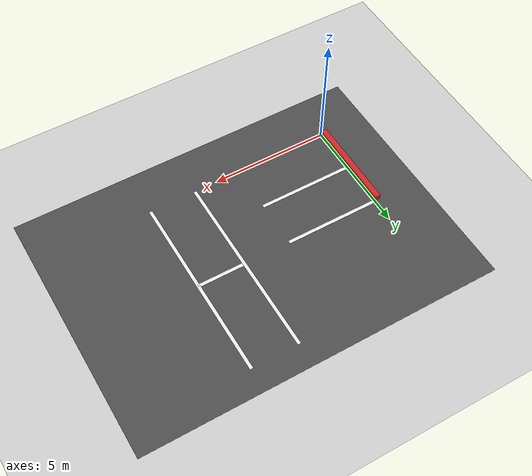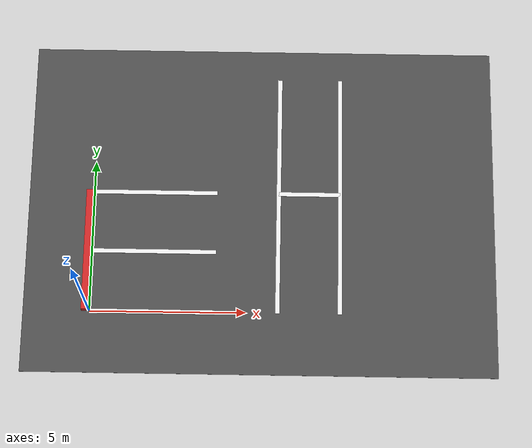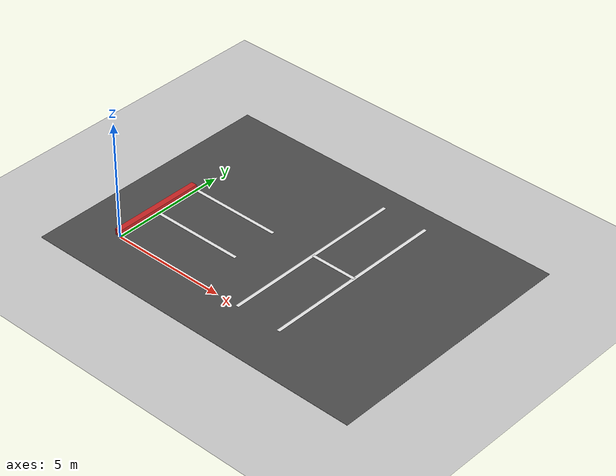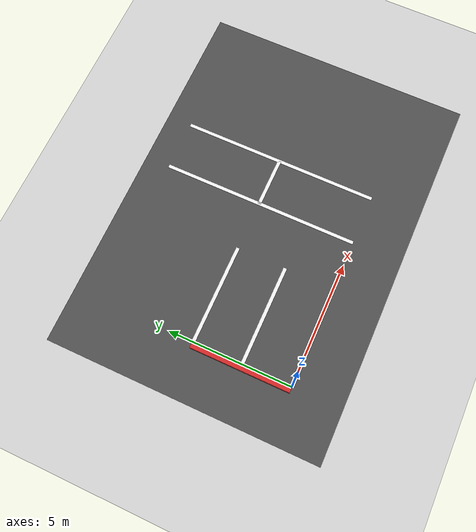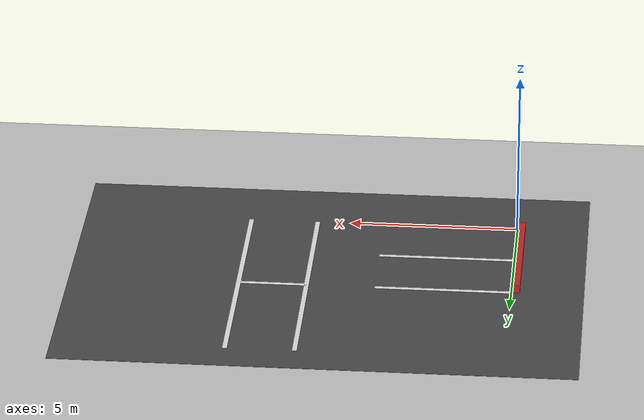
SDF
<sdf version="1.4">
 <world name="default">
  <light name="sun" type="directional">
   <pose>0 0 10 0 -0 0</pose>
   <diffuse>0.8 0.8 0.8 1</diffuse>
   <specular>0.2 0.2 0.2 1</specular>
   <attenuation>
    <range>1000</range>
    <constant>0.9</constant>
    <linear>0.01</linear>
    <quadratic>0.001</quadratic>
   </attenuation>
   <direction>-0.5 0.1 -0.9</direction>
  </light>
  <model name="ground_plane">
   <static>1</static>
   <link name="link">
    <collision name="collision">
     <geometry><plane><normal>0 0 1</normal><size>100 100</size></plane></geometry>
     <surface><friction><ode><mu>100</mu><mu2>50</mu2></ode></friction></surface>
    </collision>
    <visual name="visual">
     <cast_shadows>0</cast_shadows>
     <geometry><plane><normal>0 0 1</normal><size>100 100</size></plane></geometry>
     <material>
      <script><uri>file://media/materials/scripts/gazebo.material</uri><name>Gazebo/Grey</name></script>
     </material>
    </visual>
    <velocity_decay><linear>0</linear><angular>0</angular></velocity_decay>
   </link>
  </model>
  <physics type="ode">
   <max_step_size>0.001</max_step_size>
   <real_time_factor>1</real_time_factor>
   <real_time_update_rate>1000</real_time_update_rate>
   <gravity>0 0 -9.8</gravity>
  </physics>
  <scene><ambient>0.4 0.4 0.4 1</ambient><background>0.7 0.7 0.7 1</background><shadows>1</shadows></scene>
  <spherical_coordinates>
   <surface_model>EARTH_WGS84</surface_model>
   <latitude_deg>0</latitude_deg>
   <longitude_deg>0</longitude_deg>
   <elevation>0</elevation>
   <heading_deg>0</heading_deg>
  </spherical_coordinates>
  <model name="asphalt_plane">
   <static>1</static>
   <link name="link">
    <collision name="collision">
     <geometry><box><size>15.125000 11.000000 0.010000</size></box></geometry>
    </collision>
    <visual name="visual">
     <cast_shadows>0</cast_shadows>
     <geometry><box><size>15.125000 11.000000 0.010000</size></box></geometry>
     <material>
      <script>
       <uri>model://asphalt_plane/materials/scripts</uri>
       <uri>model://asphalt_plane/materials/textures</uri>
       <name>vrc/asphalt</name>
      </script>
     </material>
    </visual>
    <velocity_decay><linear>0</linear><angular>0</angular></velocity_decay>
   </link>
   <pose>5.437500 3.500000 0 0 -0 0</pose>
  </model>
  <model name="line_1">
   <pose>2.000000 0.000000 0 0 -0 0.000000</pose>
   <link name="link">
    <inertial>
     <mass>1</mass>
     <inertia><ixx>1</ixx><ixy>0</ixy><ixz>0</ixz><iyy>1</iyy><iyz>0</iyz><izz>1</izz></inertia>
    </inertial>
    <collision name="collision">
     <geometry><box><size>4.000000 0.140000 0.020000</size></box></geometry>
    </collision>
    <visual name="visual">
     <geometry><box><size>4.000000 0.140000 0.020000</size></box></geometry>
     <material>
      <script><uri>file://media/materials/scripts/gazebo.material</uri><name>Gazebo/White</name></script>
     </material>
    </visual>
    <velocity_decay><linear>0</linear><angular>0</angular></velocity_decay>
   </link>
   <static>1</static>
  </model>
  <model name="line_2">
   <pose>2.000000 2.000000 0 0 -0 0.000000</pose>
   <link name="link">
    <inertial>
     <mass>1</mass>
     <inertia><ixx>1</ixx><ixy>0</ixy><ixz>0</ixz><iyy>1</iyy><iyz>0</iyz><izz>1</izz></inertia>
    </inertial>
    <collision name="collision">
     <geometry><box><size>4.000000 0.140000 0.020000</size></box></geometry>
    </collision>
    <visual name="visual">
     <geometry><box><size>4.000000 0.140000 0.020000</size></box></geometry>
     <material>
      <script><uri>file://media/materials/scripts/gazebo.material</uri><name>Gazebo/White</name></script>
     </material>
    </visual>
    <velocity_decay><linear>0</linear><angular>0</angular></velocity_decay>
   </link>
   <static>1</static>
  </model>
  <model name="line_3">
   <pose>2.000000 4.000000 0 0 -0 0.000000</pose>
   <link name="link">
    <inertial>
     <mass>1</mass>
     <inertia><ixx>1</ixx><ixy>0</ixy><ixz>0</ixz><iyy>1</iyy><iyz>0</iyz><izz>1</izz></inertia>
    </inertial>
    <collision name="collision">
     <geometry><box><size>4.000000 0.140000 0.020000</size></box></geometry>
    </collision>
    <visual name="visual">
     <geometry><box><size>4.000000 0.140000 0.020000</size></box></geometry>
     <material>
      <script><uri>file://media/materials/scripts/gazebo.material</uri><name>Gazebo/White</name></script>
     </material>
    </visual>
    <velocity_decay><linear>0</linear><angular>0</angular></velocity_decay>
   </link>
   <static>1</static>
  </model>
  <model name="line_4">
   <pose>6.000000 4.000000 0 0 -0 1.570796</pose>
   <link name="link">
    <inertial>
     <mass>1</mass>
     <inertia><ixx>1</ixx><ixy>0</ixy><ixz>0</ixz><iyy>1</iyy><iyz>0</iyz><izz>1</izz></inertia>
    </inertial>
    <collision name="collision">
     <geometry><box><size>8.000000 0.140000 0.020000</size></box></geometry>
    </collision>
    <visual name="visual">
     <geometry><box><size>8.000000 0.140000 0.020000</size></box></geometry>
     <material>
      <script><uri>file://media/materials/scripts/gazebo.material</uri><name>Gazebo/White</name></script>
     </material>
    </visual>
    <velocity_decay><linear>0</linear><angular>0</angular></velocity_decay>
   </link>
   <static>1</static>
  </model>
  <model name="line_5">
   <pose>8.000000 4.000000 0 0 -0 1.570796</pose>
   <link name="link">
    <inertial>
     <mass>1</mass>
     <inertia><ixx>1</ixx><ixy>0</ixy><ixz>0</ixz><iyy>1</iyy><iyz>0</iyz><izz>1</izz></inertia>
    </inertial>
    <collision name="collision">
     <geometry><box><size>8.000000 0.140000 0.020000</size></box></geometry>
    </collision>
    <visual name="visual">
     <geometry><box><size>8.000000 0.140000 0.020000</size></box></geometry>
     <material>
      <script><uri>file://media/materials/scripts/gazebo.material</uri><name>Gazebo/White</name></script>
     </material>
    </visual>
    <velocity_decay><linear>0</linear><angular>0</angular></velocity_decay>
   </link>
   <static>1</static>
  </model>
  <model name="line_6">
   <pose>7.000000 4.000000 0 0 -0 0.000000</pose>
   <link name="link">
    <inertial>
     <mass>1</mass>
     <inertia><ixx>1</ixx><ixy>0</ixy><ixz>0</ixz><iyy>1</iyy><iyz>0</iyz><izz>1</izz></inertia>
    </inertial>
    <collision name="collision">
     <geometry><box><size>2.000000 0.140000 0.020000</size></box></geometry>
    </collision>
    <visual name="visual">
     <geometry><box><size>2.000000 0.140000 0.020000</size></box></geometry>
     <material>
      <script><uri>file://media/materials/scripts/gazebo.material</uri><name>Gazebo/White</name></script>
     </material>
    </visual>
    <velocity_decay><linear>0</linear><angular>0</angular></velocity_decay>
   </link>
   <static>1</static>
  </model>
  <model name="curb_1">
   <pose>-0.125000 2.000000 0 0 -0 1.570796</pose>
   <link name="link">
    <inertial>
     <mass>1</mass>
     <inertia><ixx>1</ixx><ixy>0</ixy><ixz>0</ixz><iyy>1</iyy><iyz>0</iyz><izz>1</izz></inertia>
    </inertial>
    <collision name="collision">
     <geometry><box><size>4.000000 0.250000 0.500000</size></box></geometry>
    </collision>
    <visual name="visual">
     <geometry><box><size>4.000000 0.250000 0.500000</size></box></geometry>
     <material>
      <script><uri>file://media/materials/scripts/gazebo.material</uri><name>Gazebo/Red</name></script>
     </material>
    </visual>
    <velocity_decay><linear>0</linear><angular>0</angular></velocity_decay>
   </link>
   <static>1</static>
  </model>
 </world>
</sdf>
